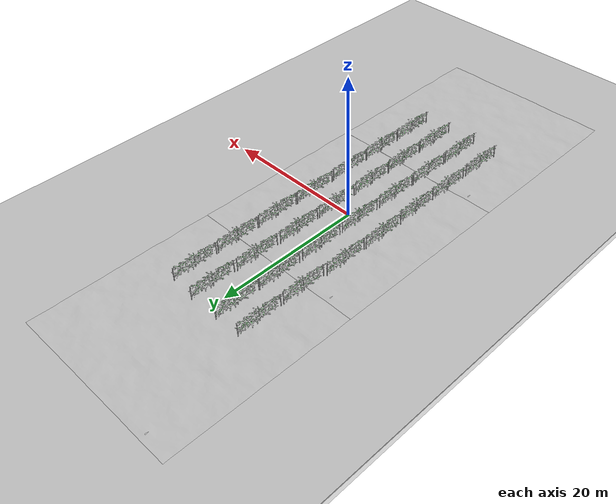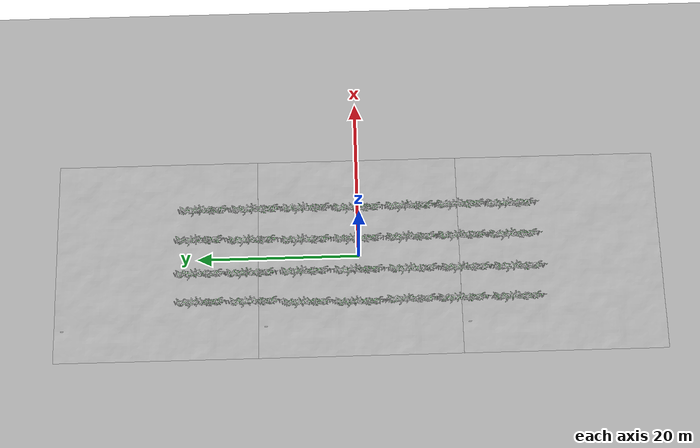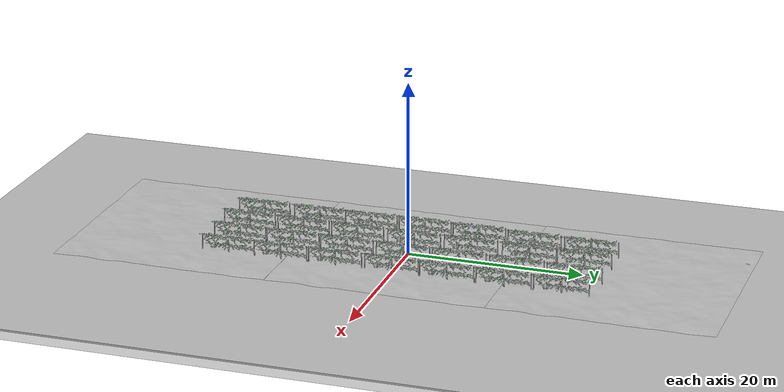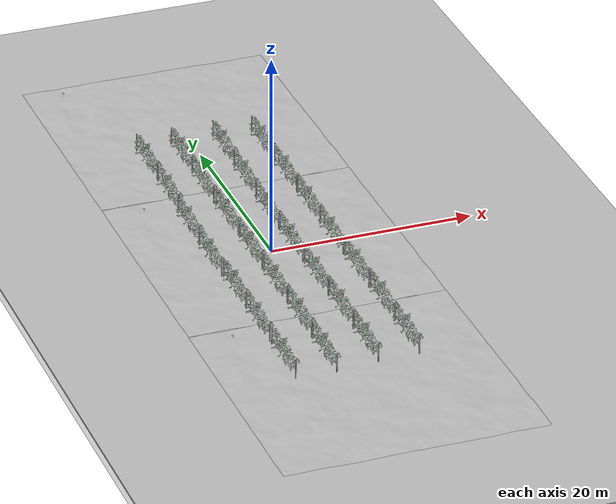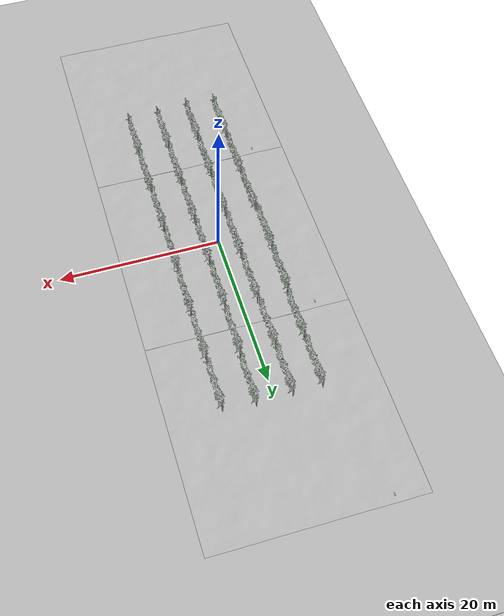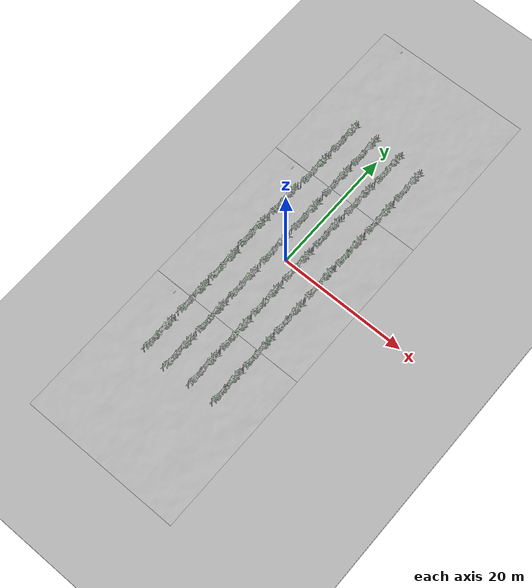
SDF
<sdf version="1.6">
 <world name="default">
  <light name="sun" type="directional">
   <pose>0 0 10 0 -0 0</pose>
   <diffuse>0.8 0.8 0.8 1</diffuse>
   <specular>0.2 0.2 0.2 1</specular>
   <attenuation>
    <range>1000</range>
    <constant>0.9</constant>
    <linear>0.01</linear>
    <quadratic>0.001</quadratic>
   </attenuation>
   <direction>-0.5 0.1 -0.9</direction>
  </light>
  <model name="ground_plane">
   <pose>0 0 -1 0 -0 0</pose>
   <static>1</static>
   <link name="link">
    <collision name="collision">
     <geometry><plane><normal>0 0 1</normal><size>100 100</size></plane></geometry>
     <surface><friction><ode><mu>100</mu><mu2>50</mu2></ode></friction></surface>
    </collision>
    <visual name="visual">
     <cast_shadows>0</cast_shadows>
     <geometry><plane><normal>0 0 1</normal><size>100 100</size></plane></geometry>
     <material>
      <script><uri>file://media/materials/scripts/gazebo.material</uri><name>Gazebo/Grey</name></script>
     </material>
    </visual>
   </link>
  </model>
  <gravity>0 0 -9.8</gravity>
  <magnetic_field>6e-06 2.3e-05 -4.2e-05</magnetic_field>
  <atmosphere type="adiabatic"/>
  <physics name="default_physics" default="0" type="ode">
   <max_step_size>0.001</max_step_size>
   <real_time_factor>1</real_time_factor>
   <real_time_update_rate>1000</real_time_update_rate>
  </physics>
  <scene><ambient>0.4 0.4 0.4 1</ambient><background>0.7 0.7 0.7 1</background><shadows>1</shadows></scene>
  <spherical_coordinates>
   <surface_model>EARTH_WGS84</surface_model>
   <latitude_deg>0</latitude_deg>
   <longitude_deg>0</longitude_deg>
   <elevation>0</elevation>
   <heading_deg>0</heading_deg>
  </spherical_coordinates>
  <model name="grass_ground_plane">
   <static>1</static>
   <link name="link">
    <collision name="collision">
     <geometry><plane><normal>0 0 1</normal><size>200 200</size></plane></geometry>
     <surface><friction><ode><mu>0.5</mu><mu2>0.5</mu2></ode></friction></surface>
    </collision>
    <visual name="visual">
     <cast_shadows>0</cast_shadows>
     <geometry><plane><normal>0 0 1</normal><size>200 200</size></plane></geometry>
     <material>
      <script>
       <uri>model://grass_ground_plane/materials/scripts/grass_ground_plane.material</uri>
       <name>GrassGroundPlane/Image</name>
      </script>
     </material>
    </visual>
   </link>
   <pose>0 0 5e-06 0 -0 0</pose>
  </model>
  <model name="heightmap">
   <static>1</static>
   <link name="link">
    <collision name="collision">
     <geometry><mesh><uri>model://heightmap_realistic/meshes/heightmap.dae</uri></mesh></geometry>
    </collision>
    <visual name="visual">
     <geometry><mesh><uri>model://heightmap_realistic/meshes/heightmap.dae</uri></mesh></geometry>
    </visual>
   </link>
  </model>
  <model name="heightmap_0">
   <static>1</static>
   <link name="link">
    <collision name="collision">
     <geometry><mesh><uri>model://heightmap_realistic/meshes/heightmap.dae</uri></mesh></geometry>
    </collision>
    <visual name="visual">
     <geometry><mesh><uri>model://heightmap_realistic/meshes/heightmap.dae</uri></mesh></geometry>
    </visual>
   </link>
   <pose>0 25 0 0 -0 0</pose>
  </model>
  <model name="vine_t0_coarse">
   <static>1</static>
   <link name="link">
    <collision name="collision">
     <geometry><mesh><uri>model://vine_t0_coarse/meshes/vine_t0_coarse.dae</uri></mesh></geometry>
    </collision>
    <visual name="visual">
     <geometry><mesh><uri>model://vine_t0_coarse/meshes/vine_t0_coarse.dae</uri></mesh></geometry>
    </visual>
   </link>
   <pose>2 0 0 0 -0 1.5708</pose>
  </model>
  <model name="heightmap_1">
   <static>1</static>
   <link name="link">
    <collision name="collision">
     <geometry><mesh><uri>model://heightmap_realistic/meshes/heightmap.dae</uri></mesh></geometry>
    </collision>
    <visual name="visual">
     <geometry><mesh><uri>model://heightmap_realistic/meshes/heightmap.dae</uri></mesh></geometry>
    </visual>
   </link>
   <pose>0 -25 0 0 -0 0</pose>
  </model>
  <model name="vine_t0_coarse_clone">
   <static>1</static>
   <link name="link">
    <collision name="collision">
     <geometry><mesh><uri>model://vine_t0_coarse/meshes/vine_t0_coarse.dae</uri></mesh></geometry>
    </collision>
    <visual name="visual">
     <geometry><mesh><uri>model://vine_t0_coarse/meshes/vine_t0_coarse.dae</uri></mesh></geometry>
    </visual>
   </link>
   <pose>2.0056 6.5084 0 0 -0 1.5708</pose>
  </model>
  <model name="vine_t0_coarse_clone_0">
   <static>1</static>
   <link name="link">
    <collision name="collision">
     <geometry><mesh><uri>model://vine_t0_coarse/meshes/vine_t0_coarse.dae</uri></mesh></geometry>
    </collision>
    <visual name="visual">
     <geometry><mesh><uri>model://vine_t0_coarse/meshes/vine_t0_coarse.dae</uri></mesh></geometry>
    </visual>
   </link>
   <pose>2.1224 13.1337 0 0 -0 1.5708</pose>
  </model>
  <model name="vine_t0_coarse_clone_1">
   <static>1</static>
   <link name="link">
    <collision name="collision">
     <geometry><mesh><uri>model://vine_t0_coarse/meshes/vine_t0_coarse.dae</uri></mesh></geometry>
    </collision>
    <visual name="visual">
     <geometry><mesh><uri>model://vine_t0_coarse/meshes/vine_t0_coarse.dae</uri></mesh></geometry>
    </visual>
   </link>
   <pose>2.2712 19.6825 0 0 -0 1.5708</pose>
  </model>
  <model name="vine_t0_coarse_clone_2">
   <static>1</static>
   <link name="link">
    <collision name="collision">
     <geometry><mesh><uri>model://vine_t0_coarse/meshes/vine_t0_coarse.dae</uri></mesh></geometry>
    </collision>
    <visual name="visual">
     <geometry><mesh><uri>model://vine_t0_coarse/meshes/vine_t0_coarse.dae</uri></mesh></geometry>
    </visual>
   </link>
   <pose>2.0256 -6.55782 0 0 -0 1.5708</pose>
  </model>
  <model name="vine_t0_coarse_clone_3">
   <static>1</static>
   <link name="link">
    <collision name="collision">
     <geometry><mesh><uri>model://vine_t0_coarse/meshes/vine_t0_coarse.dae</uri></mesh></geometry>
    </collision>
    <visual name="visual">
     <geometry><mesh><uri>model://vine_t0_coarse/meshes/vine_t0_coarse.dae</uri></mesh></geometry>
    </visual>
   </link>
   <pose>2.07063 -12.9212 0 0 -0 1.5708</pose>
  </model>
  <model name="vine_t0_coarse_clone_4">
   <static>1</static>
   <link name="link">
    <collision name="collision">
     <geometry><mesh><uri>model://vine_t0_coarse/meshes/vine_t0_coarse.dae</uri></mesh></geometry>
    </collision>
    <visual name="visual">
     <geometry><mesh><uri>model://vine_t0_coarse/meshes/vine_t0_coarse.dae</uri></mesh></geometry>
    </visual>
   </link>
   <pose>2.0475 -19.2928 0 0 -0 1.5708</pose>
  </model>
  <model name="vine_t0_coarse_clone_5">
   <static>1</static>
   <link name="link">
    <collision name="collision">
     <geometry><mesh><uri>model://vine_t0_coarse/meshes/vine_t0_coarse.dae</uri></mesh></geometry>
    </collision>
    <visual name="visual">
     <geometry><mesh><uri>model://vine_t0_coarse/meshes/vine_t0_coarse.dae</uri></mesh></geometry>
    </visual>
   </link>
   <pose>-2 0 0 0 -0 1.5708</pose>
  </model>
  <model name="vine_t0_coarse_clone_5_clone">
   <static>1</static>
   <link name="link">
    <collision name="collision">
     <geometry><mesh><uri>model://vine_t0_coarse/meshes/vine_t0_coarse.dae</uri></mesh></geometry>
    </collision>
    <visual name="visual">
     <geometry><mesh><uri>model://vine_t0_coarse/meshes/vine_t0_coarse.dae</uri></mesh></geometry>
    </visual>
   </link>
   <pose>-2.01073 6.64331 0 0 -0 1.5708</pose>
  </model>
  <model name="vine_t0_coarse_clone_5_clone_0">
   <static>1</static>
   <link name="link">
    <collision name="collision">
     <geometry><mesh><uri>model://vine_t0_coarse/meshes/vine_t0_coarse.dae</uri></mesh></geometry>
    </collision>
    <visual name="visual">
     <geometry><mesh><uri>model://vine_t0_coarse/meshes/vine_t0_coarse.dae</uri></mesh></geometry>
    </visual>
   </link>
   <pose>-2.05055 13.3731 0 0 -0 1.5708</pose>
  </model>
  <model name="vine_t0_coarse_clone_5_clone_1">
   <static>1</static>
   <link name="link">
    <collision name="collision">
     <geometry><mesh><uri>model://vine_t0_coarse/meshes/vine_t0_coarse.dae</uri></mesh></geometry>
    </collision>
    <visual name="visual">
     <geometry><mesh><uri>model://vine_t0_coarse/meshes/vine_t0_coarse.dae</uri></mesh></geometry>
    </visual>
   </link>
   <pose>-2.01388 19.6567 0 0 -0 1.5708</pose>
  </model>
  <model name="vine_t0_coarse_clone_5_clone_2">
   <static>1</static>
   <link name="link">
    <collision name="collision">
     <geometry><mesh><uri>model://vine_t0_coarse/meshes/vine_t0_coarse.dae</uri></mesh></geometry>
    </collision>
    <visual name="visual">
     <geometry><mesh><uri>model://vine_t0_coarse/meshes/vine_t0_coarse.dae</uri></mesh></geometry>
    </visual>
   </link>
   <pose>-2.0123 -6.70217 0 0 -0 1.5708</pose>
  </model>
  <model name="vine_t0_coarse_clone_5_clone_3">
   <static>1</static>
   <link name="link">
    <collision name="collision">
     <geometry><mesh><uri>model://vine_t0_coarse/meshes/vine_t0_coarse.dae</uri></mesh></geometry>
    </collision>
    <visual name="visual">
     <geometry><mesh><uri>model://vine_t0_coarse/meshes/vine_t0_coarse.dae</uri></mesh></geometry>
    </visual>
   </link>
   <pose>-2.02402 -13.1853 0 0 -0 1.5708</pose>
  </model>
  <model name="vine_t0_coarse_clone_5_clone_4">
   <static>1</static>
   <link name="link">
    <collision name="collision">
     <geometry><mesh><uri>model://vine_t0_coarse/meshes/vine_t0_coarse.dae</uri></mesh></geometry>
    </collision>
    <visual name="visual">
     <geometry><mesh><uri>model://vine_t0_coarse/meshes/vine_t0_coarse.dae</uri></mesh></geometry>
    </visual>
   </link>
   <pose>-2.05957 -19.6829 0 0 -0 1.5708</pose>
  </model>
  <model name="vine_t0_coarse_clone_5_clone_5">
   <static>1</static>
   <link name="link">
    <collision name="collision">
     <geometry><mesh><uri>model://vine_t0_coarse/meshes/vine_t0_coarse.dae</uri></mesh></geometry>
    </collision>
    <visual name="visual">
     <geometry><mesh><uri>model://vine_t0_coarse/meshes/vine_t0_coarse.dae</uri></mesh></geometry>
    </visual>
   </link>
   <pose>-6 0 0 0 -0 1.5708</pose>
  </model>
  <model name="vine_t0_coarse_clone_5_clone_5_clone">
   <static>1</static>
   <link name="link">
    <collision name="collision">
     <geometry><mesh><uri>model://vine_t0_coarse/meshes/vine_t0_coarse.dae</uri></mesh></geometry>
    </collision>
    <visual name="visual">
     <geometry><mesh><uri>model://vine_t0_coarse/meshes/vine_t0_coarse.dae</uri></mesh></geometry>
    </visual>
   </link>
   <pose>6 0 0 0 -0 1.5708</pose>
  </model>
  <model name="vine_t0_coarse_clone_5_clone_1_clone">
   <static>1</static>
   <link name="link">
    <collision name="collision">
     <geometry><mesh><uri>model://vine_t0_coarse/meshes/vine_t0_coarse.dae</uri></mesh></geometry>
    </collision>
    <visual name="visual">
     <geometry><mesh><uri>model://vine_t0_coarse/meshes/vine_t0_coarse.dae</uri></mesh></geometry>
    </visual>
   </link>
   <pose>-5.88838 6.44554 0 0 -0 1.5708</pose>
  </model>
  <model name="vine_t0_coarse_clone_5_clone_1_clone_0">
   <static>1</static>
   <link name="link">
    <collision name="collision">
     <geometry><mesh><uri>model://vine_t0_coarse/meshes/vine_t0_coarse.dae</uri></mesh></geometry>
    </collision>
    <visual name="visual">
     <geometry><mesh><uri>model://vine_t0_coarse/meshes/vine_t0_coarse.dae</uri></mesh></geometry>
    </visual>
   </link>
   <pose>-5.63566 12.9657 0 0 -0 1.5708</pose>
  </model>
  <model name="vine_t0_coarse_clone_5_clone_1_clone_1">
   <static>1</static>
   <link name="link">
    <collision name="collision">
     <geometry><mesh><uri>model://vine_t0_coarse/meshes/vine_t0_coarse.dae</uri></mesh></geometry>
    </collision>
    <visual name="visual">
     <geometry><mesh><uri>model://vine_t0_coarse/meshes/vine_t0_coarse.dae</uri></mesh></geometry>
    </visual>
   </link>
   <pose>-5.58512 19.5364 0 0 -0 1.5708</pose>
  </model>
  <model name="vine_t0_coarse_clone_5_clone_1_clone_2">
   <static>1</static>
   <link name="link">
    <collision name="collision">
     <geometry><mesh><uri>model://vine_t0_coarse/meshes/vine_t0_coarse.dae</uri></mesh></geometry>
    </collision>
    <visual name="visual">
     <geometry><mesh><uri>model://vine_t0_coarse/meshes/vine_t0_coarse.dae</uri></mesh></geometry>
    </visual>
   </link>
   <pose>-5.83784 -6.34211 0 0 -0 1.5708</pose>
  </model>
  <model name="vine_t0_coarse_clone_5_clone_1_clone_3">
   <static>1</static>
   <link name="link">
    <collision name="collision">
     <geometry><mesh><uri>model://vine_t0_coarse/meshes/vine_t0_coarse.dae</uri></mesh></geometry>
    </collision>
    <visual name="visual">
     <geometry><mesh><uri>model://vine_t0_coarse/meshes/vine_t0_coarse.dae</uri></mesh></geometry>
    </visual>
   </link>
   <pose>-5.83784 -12.559 0 0 -0 1.5708</pose>
  </model>
  <model name="vine_t0_coarse_clone_5_clone_1_clone_4">
   <static>1</static>
   <link name="link">
    <collision name="collision">
     <geometry><mesh><uri>model://vine_t0_coarse/meshes/vine_t0_coarse.dae</uri></mesh></geometry>
    </collision>
    <visual name="visual">
     <geometry><mesh><uri>model://vine_t0_coarse/meshes/vine_t0_coarse.dae</uri></mesh></geometry>
    </visual>
   </link>
   <pose>-5.83784 -19.3319 0 0 -0 1.5708</pose>
  </model>
  <model name="vine_t0_coarse_clone_5_clone_1_clone_5">
   <static>1</static>
   <link name="link">
    <collision name="collision">
     <geometry><mesh><uri>model://vine_t0_coarse/meshes/vine_t0_coarse.dae</uri></mesh></geometry>
    </collision>
    <visual name="visual">
     <geometry><mesh><uri>model://vine_t0_coarse/meshes/vine_t0_coarse.dae</uri></mesh></geometry>
    </visual>
   </link>
   <pose>6.04002 -6.54428 0 0 -0 1.5708</pose>
  </model>
  <model name="vine_t0_coarse_clone_5_clone_1_clone_6">
   <static>1</static>
   <link name="link">
    <collision name="collision">
     <geometry><mesh><uri>model://vine_t0_coarse/meshes/vine_t0_coarse.dae</uri></mesh></geometry>
    </collision>
    <visual name="visual">
     <geometry><mesh><uri>model://vine_t0_coarse/meshes/vine_t0_coarse.dae</uri></mesh></geometry>
    </visual>
   </link>
   <pose>6.09056 -12.9128 0 0 -0 1.5708</pose>
  </model>
  <model name="vine_t0_coarse_clone_5_clone_1_clone_7">
   <static>1</static>
   <link name="link">
    <collision name="collision">
     <geometry><mesh><uri>model://vine_t0_coarse/meshes/vine_t0_coarse.dae</uri></mesh></geometry>
    </collision>
    <visual name="visual">
     <geometry><mesh><uri>model://vine_t0_coarse/meshes/vine_t0_coarse.dae</uri></mesh></geometry>
    </visual>
   </link>
   <pose>6.04089 -19.1298 0 0 -0 1.5708</pose>
  </model>
  <model name="vine_t0_coarse_clone_5_clone_1_clone_8">
   <static>1</static>
   <link name="link">
    <collision name="collision">
     <geometry><mesh><uri>model://vine_t0_coarse/meshes/vine_t0_coarse.dae</uri></mesh></geometry>
    </collision>
    <visual name="visual">
     <geometry><mesh><uri>model://vine_t0_coarse/meshes/vine_t0_coarse.dae</uri></mesh></geometry>
    </visual>
   </link>
   <pose>6.09144 6.34445 0 0 -0 1.5708</pose>
  </model>
  <model name="vine_t0_coarse_clone_5_clone_1_clone_9">
   <static>1</static>
   <link name="link">
    <collision name="collision">
     <geometry><mesh><uri>model://vine_t0_coarse/meshes/vine_t0_coarse.dae</uri></mesh></geometry>
    </collision>
    <visual name="visual">
     <geometry><mesh><uri>model://vine_t0_coarse/meshes/vine_t0_coarse.dae</uri></mesh></geometry>
    </visual>
   </link>
   <pose>6.09144 12.7635 0 0 -0 1.5708</pose>
  </model>
  <model name="vine_t0_coarse_clone_5_clone_1_clone_10">
   <static>1</static>
   <link name="link">
    <collision name="collision">
     <geometry><mesh><uri>model://vine_t0_coarse/meshes/vine_t0_coarse.dae</uri></mesh></geometry>
    </collision>
    <visual name="visual">
     <geometry><mesh><uri>model://vine_t0_coarse/meshes/vine_t0_coarse.dae</uri></mesh></geometry>
    </visual>
   </link>
   <pose>6.09145 19.2332 0 0 -0 1.5708</pose>
  </model>
 </world>
</sdf>
